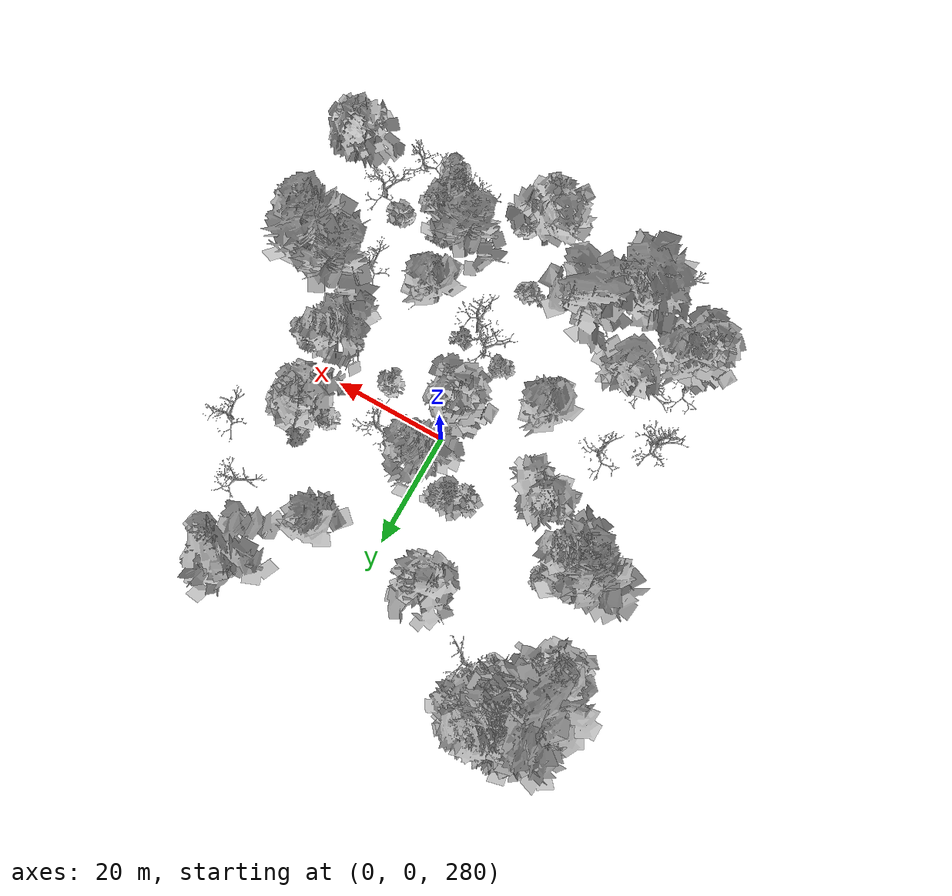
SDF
<sdf version="1.6">
 <world name="default">
  <light name="sun" type="directional">
   <pose>0 0 10 0 -0 0</pose>
   <diffuse>0.8 0.8 0.8 1</diffuse>
   <specular>0.2 0.2 0.2 1</specular>
   <attenuation>
    <range>1000</range>
    <constant>0.9</constant>
    <linear>0.01</linear>
    <quadratic>0.001</quadratic>
   </attenuation>
   <direction>-0.5 0.1 -0.9</direction>
  </light>
  <scene>
   <sky><clouds><speed>12</speed></clouds></sky>
   <ambient>0.4 0.4 0.4 1</ambient>
   <background>0.7 0.7 0.7 1</background>
   <shadows>1</shadows>
  </scene>
  <spherical_coordinates>
   <surface_model>EARTH_WGS84</surface_model>
   <latitude_deg>47.3977</latitude_deg>
   <longitude_deg>8.54559</longitude_deg>
   <elevation>0</elevation>
   <heading_deg>0</heading_deg>
  </spherical_coordinates>
  <physics name="default_physics" default="0" type="ode">
   <ode>
    <solver>
     <type>quick</type>
     <iters>100</iters>
     <sor>1.3</sor>
     <use_dynamic_moi_rescaling>0</use_dynamic_moi_rescaling>
    </solver>
    <constraints>
     <cfm>0</cfm>
     <erp>0.2</erp>
     <contact_max_correcting_vel>100</contact_max_correcting_vel>
     <contact_surface_layer>0.001</contact_surface_layer>
    </constraints>
   </ode>
   <max_step_size>0.002</max_step_size>
   <real_time_factor>1</real_time_factor>
   <real_time_update_rate>500</real_time_update_rate>
  </physics>
  <gravity>0 0 -9.8</gravity>
  <magnetic_field>6e-06 2.3e-05 -4.2e-05</magnetic_field>
  <atmosphere type="adiabatic"/>
  <model name="my_mesh0">
   <pose>-27.08 29.3616 283.309 0 -0 1.56058</pose>
   <static>1</static>
   <link name="body">
    <visual name="visual">
     <geometry><mesh><uri>model://trees/3.dae</uri><scale>1 1 1</scale></mesh></geometry>
    </visual>
    <collision name="collision">
     <geometry><mesh><uri>model://trees/3.dae</uri><scale>1 1 1</scale></mesh></geometry>
    </collision>
   </link>
  </model>
  <model name="my_mesh1">
   <pose>-33.2148 34.19 281.773 0 0 -1.0908</pose>
   <static>1</static>
   <link name="body">
    <visual name="visual">
     <geometry><mesh><uri>model://trees/13.dae</uri><scale>1 1 1</scale></mesh></geometry>
    </visual>
    <collision name="collision">
     <geometry><mesh><uri>model://trees/13.dae</uri><scale>1 1 1</scale></mesh></geometry>
    </collision>
   </link>
  </model>
  <model name="my_mesh2">
   <pose>-27.71 35.5676 282.251 0 0 -0.21924</pose>
   <static>1</static>
   <link name="body">
    <visual name="visual">
     <geometry><mesh><uri>model://trees/17.dae</uri><scale>1 1 1</scale></mesh></geometry>
    </visual>
    <collision name="collision">
     <geometry><mesh><uri>model://trees/17.dae</uri><scale>1 1 1</scale></mesh></geometry>
    </collision>
   </link>
  </model>
  <model name="my_mesh3">
   <pose>-34.9308 33.2199 281.82 0 -0 0.451699</pose>
   <static>1</static>
   <link name="body">
    <visual name="visual">
     <geometry><mesh><uri>model://trees/12.dae</uri><scale>1 1 1</scale></mesh></geometry>
    </visual>
    <collision name="collision">
     <geometry><mesh><uri>model://trees/12.dae</uri><scale>1 1 1</scale></mesh></geometry>
    </collision>
   </link>
  </model>
  <model name="my_mesh4">
   <pose>-27.6302 35.4316 282.251 0 -0 0.899439</pose>
   <static>1</static>
   <link name="body">
    <visual name="visual">
     <geometry><mesh><uri>model://trees/9.dae</uri><scale>1 1 1</scale></mesh></geometry>
    </visual>
    <collision name="collision">
     <geometry><mesh><uri>model://trees/9.dae</uri><scale>1 1 1</scale></mesh></geometry>
    </collision>
   </link>
  </model>
  <model name="my_mesh5">
   <pose>-34.9073 29.0849 282.547 0 0 -0.911531</pose>
   <static>1</static>
   <link name="body">
    <visual name="visual">
     <geometry><mesh><uri>model://trees/14.dae</uri><scale>1 1 1</scale></mesh></geometry>
    </visual>
    <collision name="collision">
     <geometry><mesh><uri>model://trees/14.dae</uri><scale>1 1 1</scale></mesh></geometry>
    </collision>
   </link>
  </model>
  <model name="my_mesh6">
   <pose>-34.633 24.4824 283.371 0 0 -0.64298</pose>
   <static>1</static>
   <link name="body">
    <visual name="visual">
     <geometry><mesh><uri>model://trees/11.dae</uri><scale>1 1 1</scale></mesh></geometry>
    </visual>
    <collision name="collision">
     <geometry><mesh><uri>model://trees/11.dae</uri><scale>1 1 1</scale></mesh></geometry>
    </collision>
   </link>
  </model>
  <model name="my_mesh7">
   <pose>-35.4979 32.6104 281.944 0 -0 1.14506</pose>
   <static>1</static>
   <link name="body">
    <visual name="visual">
     <geometry><mesh><uri>model://trees/14.dae</uri><scale>1 1 1</scale></mesh></geometry>
    </visual>
    <collision name="collision">
     <geometry><mesh><uri>model://trees/14.dae</uri><scale>1 1 1</scale></mesh></geometry>
    </collision>
   </link>
  </model>
  <model name="my_mesh8">
   <pose>-33.7029 29.4843 282.44 0 0 -1.15808</pose>
   <static>1</static>
   <link name="body">
    <visual name="visual">
     <geometry><mesh><uri>model://trees/13.dae</uri><scale>1 1 1</scale></mesh></geometry>
    </visual>
    <collision name="collision">
     <geometry><mesh><uri>model://trees/13.dae</uri><scale>1 1 1</scale></mesh></geometry>
    </collision>
   </link>
  </model>
  <model name="my_mesh9">
   <pose>-31.7234 34.7584 281.894 0 -0 1.48763</pose>
   <static>1</static>
   <link name="body">
    <visual name="visual">
     <geometry><mesh><uri>model://trees/5.dae</uri><scale>1 1 1</scale></mesh></geometry>
    </visual>
    <collision name="collision">
     <geometry><mesh><uri>model://trees/5.dae</uri><scale>1 1 1</scale></mesh></geometry>
    </collision>
   </link>
  </model>
  <model name="my_mesh10">
   <pose>-29.0335 33.8658 282.332 0 0 -0.071717</pose>
   <static>1</static>
   <link name="body">
    <visual name="visual">
     <geometry><mesh><uri>model://trees/15.dae</uri><scale>1 1 1</scale></mesh></geometry>
    </visual>
    <collision name="collision">
     <geometry><mesh><uri>model://trees/15.dae</uri><scale>1 1 1</scale></mesh></geometry>
    </collision>
   </link>
  </model>
  <model name="my_mesh11">
   <pose>-33.6003 34.6617 281.659 0 -0 0.448409</pose>
   <static>1</static>
   <link name="body">
    <visual name="visual">
     <geometry><mesh><uri>model://trees/12.dae</uri><scale>1 1 1</scale></mesh></geometry>
    </visual>
    <collision name="collision">
     <geometry><mesh><uri>model://trees/12.dae</uri><scale>1 1 1</scale></mesh></geometry>
    </collision>
   </link>
  </model>
  <model name="my_mesh12">
   <pose>-35.8152 30.1003 282.234 0 0 -0.646341</pose>
   <static>1</static>
   <link name="body">
    <visual name="visual">
     <geometry><mesh><uri>model://trees/2.dae</uri><scale>1 1 1</scale></mesh></geometry>
    </visual>
    <collision name="collision">
     <geometry><mesh><uri>model://trees/2.dae</uri><scale>1 1 1</scale></mesh></geometry>
    </collision>
   </link>
  </model>
  <model name="my_mesh13">
   <pose>-32.1141 35.4773 281.796 0 0 -0.62414</pose>
   <static>1</static>
   <link name="body">
    <visual name="visual">
     <geometry><mesh><uri>model://trees/12.dae</uri><scale>1 1 1</scale></mesh></geometry>
    </visual>
    <collision name="collision">
     <geometry><mesh><uri>model://trees/12.dae</uri><scale>1 1 1</scale></mesh></geometry>
    </collision>
   </link>
  </model>
  <model name="my_mesh14">
   <pose>-34.2608 32.1847 282.056 0 0 -0.148178</pose>
   <static>1</static>
   <link name="body">
    <visual name="visual">
     <geometry><mesh><uri>model://trees/16.dae</uri><scale>1 1 1</scale></mesh></geometry>
    </visual>
    <collision name="collision">
     <geometry><mesh><uri>model://trees/16.dae</uri><scale>1 1 1</scale></mesh></geometry>
    </collision>
   </link>
  </model>
  <model name="my_mesh15">
   <pose>-35.9845 28.1498 282.554 0 -0 0.48832</pose>
   <static>1</static>
   <link name="body">
    <visual name="visual">
     <geometry><mesh><uri>model://trees/18.dae</uri><scale>1 1 1</scale></mesh></geometry>
    </visual>
    <collision name="collision">
     <geometry><mesh><uri>model://trees/18.dae</uri><scale>1 1 1</scale></mesh></geometry>
    </collision>
   </link>
  </model>
  <model name="my_mesh16">
   <pose>-29.2542 35.751 282.116 0 -0 0.074622</pose>
   <static>1</static>
   <link name="body">
    <visual name="visual">
     <geometry><mesh><uri>model://trees/15.dae</uri><scale>1 1 1</scale></mesh></geometry>
    </visual>
    <collision name="collision">
     <geometry><mesh><uri>model://trees/15.dae</uri><scale>1 1 1</scale></mesh></geometry>
    </collision>
   </link>
  </model>
  <model name="my_mesh17">
   <pose>-34.05 34.9631 281.626 0 0 -1.38641</pose>
   <static>1</static>
   <link name="body">
    <visual name="visual">
     <geometry><mesh><uri>model://trees/9.dae</uri><scale>1 1 1</scale></mesh></geometry>
    </visual>
    <collision name="collision">
     <geometry><mesh><uri>model://trees/9.dae</uri><scale>1 1 1</scale></mesh></geometry>
    </collision>
   </link>
  </model>
  <model name="my_mesh18">
   <pose>-34.4219 35.2514 281.54 0 0 -1.02363</pose>
   <static>1</static>
   <link name="body">
    <visual name="visual">
     <geometry><mesh><uri>model://trees/10.dae</uri><scale>1 1 1</scale></mesh></geometry>
    </visual>
    <collision name="collision">
     <geometry><mesh><uri>model://trees/10.dae</uri><scale>1 1 1</scale></mesh></geometry>
    </collision>
   </link>
  </model>
  <model name="my_mesh19">
   <pose>-33.6243 33.0978 281.886 0 -0 1.3731</pose>
   <static>1</static>
   <link name="body">
    <visual name="visual">
     <geometry><mesh><uri>model://trees/16.dae</uri><scale>1 1 1</scale></mesh></geometry>
    </visual>
    <collision name="collision">
     <geometry><mesh><uri>model://trees/16.dae</uri><scale>1 1 1</scale></mesh></geometry>
    </collision>
   </link>
  </model>
  <model name="my_mesh20">
   <pose>-27.3326 30.5189 283.03 0 0 -1.53605</pose>
   <static>1</static>
   <link name="body">
    <visual name="visual">
     <geometry><mesh><uri>model://trees/18.dae</uri><scale>1 1 1</scale></mesh></geometry>
    </visual>
    <collision name="collision">
     <geometry><mesh><uri>model://trees/18.dae</uri><scale>1 1 1</scale></mesh></geometry>
    </collision>
   </link>
  </model>
  <model name="my_mesh21">
   <pose>-33.6348 35.3832 281.507 0 0 -0.627088</pose>
   <static>1</static>
   <link name="body">
    <visual name="visual">
     <geometry><mesh><uri>model://trees/13.dae</uri><scale>1 1 1</scale></mesh></geometry>
    </visual>
    <collision name="collision">
     <geometry><mesh><uri>model://trees/13.dae</uri><scale>1 1 1</scale></mesh></geometry>
    </collision>
   </link>
  </model>
  <model name="my_mesh22">
   <pose>-35.5988 30.5865 282.286 0 0 -0.412915</pose>
   <static>1</static>
   <link name="body">
    <visual name="visual">
     <geometry><mesh><uri>model://trees/17.dae</uri><scale>1 1 1</scale></mesh></geometry>
    </visual>
    <collision name="collision">
     <geometry><mesh><uri>model://trees/17.dae</uri><scale>1 1 1</scale></mesh></geometry>
    </collision>
   </link>
  </model>
  <model name="my_mesh23">
   <pose>-24.5969 35.7571 282.515 0 -0 0.45299</pose>
   <static>1</static>
   <link name="body">
    <visual name="visual">
     <geometry><mesh><uri>model://trees/16.dae</uri><scale>1 1 1</scale></mesh></geometry>
    </visual>
    <collision name="collision">
     <geometry><mesh><uri>model://trees/16.dae</uri><scale>1 1 1</scale></mesh></geometry>
    </collision>
   </link>
  </model>
  <model name="my_mesh24">
   <pose>-35.0999 32.1382 282.066 0 -0 0.443659</pose>
   <static>1</static>
   <link name="body">
    <visual name="visual">
     <geometry><mesh><uri>model://trees/8.dae</uri><scale>1 1 1</scale></mesh></geometry>
    </visual>
    <collision name="collision">
     <geometry><mesh><uri>model://trees/8.dae</uri><scale>1 1 1</scale></mesh></geometry>
    </collision>
   </link>
  </model>
  <model name="my_mesh25">
   <pose>-34.626 31.3235 282.217 0 0 -1.0514</pose>
   <static>1</static>
   <link name="body">
    <visual name="visual">
     <geometry><mesh><uri>model://trees/6.dae</uri><scale>1 1 1</scale></mesh></geometry>
    </visual>
    <collision name="collision">
     <geometry><mesh><uri>model://trees/6.dae</uri><scale>1 1 1</scale></mesh></geometry>
    </collision>
   </link>
  </model>
  <model name="my_mesh26">
   <pose>-34.9206 34.3846 281.594 0 -0 0.857285</pose>
   <static>1</static>
   <link name="body">
    <visual name="visual">
     <geometry><mesh><uri>model://trees/15.dae</uri><scale>1 1 1</scale></mesh></geometry>
    </visual>
    <collision name="collision">
     <geometry><mesh><uri>model://trees/15.dae</uri><scale>1 1 1</scale></mesh></geometry>
    </collision>
   </link>
  </model>
  <model name="my_mesh27">
   <pose>-35.2116 34.1302 281.704 0 0 -1.44666</pose>
   <static>1</static>
   <link name="body">
    <visual name="visual">
     <geometry><mesh><uri>model://trees/5.dae</uri><scale>1 1 1</scale></mesh></geometry>
    </visual>
    <collision name="collision">
     <geometry><mesh><uri>model://trees/5.dae</uri><scale>1 1 1</scale></mesh></geometry>
    </collision>
   </link>
  </model>
  <model name="my_mesh28">
   <pose>-34.598 28.6913 282.547 0 0 -1.52908</pose>
   <static>1</static>
   <link name="body">
    <visual name="visual">
     <geometry><mesh><uri>model://trees/10.dae</uri><scale>1 1 1</scale></mesh></geometry>
    </visual>
    <collision name="collision">
     <geometry><mesh><uri>model://trees/10.dae</uri><scale>1 1 1</scale></mesh></geometry>
    </collision>
   </link>
  </model>
  <model name="my_mesh29">
   <pose>-34.7157 33.9936 281.707 0 -0 0.838499</pose>
   <static>1</static>
   <link name="body">
    <visual name="visual">
     <geometry><mesh><uri>model://trees/18.dae</uri><scale>1 1 1</scale></mesh></geometry>
    </visual>
    <collision name="collision">
     <geometry><mesh><uri>model://trees/18.dae</uri><scale>1 1 1</scale></mesh></geometry>
    </collision>
   </link>
  </model>
  <model name="my_mesh30">
   <pose>-32.2778 33.9438 281.856 0 -0 0.050221</pose>
   <static>1</static>
   <link name="body">
    <visual name="visual">
     <geometry><mesh><uri>model://trees/9.dae</uri><scale>1 1 1</scale></mesh></geometry>
    </visual>
    <collision name="collision">
     <geometry><mesh><uri>model://trees/9.dae</uri><scale>1 1 1</scale></mesh></geometry>
    </collision>
   </link>
  </model>
  <model name="my_mesh31">
   <pose>-26.3823 35.094 282.403 0 0 -1.26321</pose>
   <static>1</static>
   <link name="body">
    <visual name="visual">
     <geometry><mesh><uri>model://trees/8.dae</uri><scale>1 1 1</scale></mesh></geometry>
    </visual>
    <collision name="collision">
     <geometry><mesh><uri>model://trees/8.dae</uri><scale>1 1 1</scale></mesh></geometry>
    </collision>
   </link>
  </model>
  <model name="my_mesh32">
   <pose>-35.251 33.3666 281.822 0 -0 0.907395</pose>
   <static>1</static>
   <link name="body">
    <visual name="visual">
     <geometry><mesh><uri>model://trees/5.dae</uri><scale>1 1 1</scale></mesh></geometry>
    </visual>
    <collision name="collision">
     <geometry><mesh><uri>model://trees/5.dae</uri><scale>1 1 1</scale></mesh></geometry>
    </collision>
   </link>
  </model>
  <model name="my_mesh33">
   <pose>-27.3487 6.71551 287.218 0 -0 0.512794</pose>
   <static>1</static>
   <link name="body">
    <visual name="visual">
     <geometry><mesh><uri>model://trees/8.dae</uri><scale>1 1 1</scale></mesh></geometry>
    </visual>
    <collision name="collision">
     <geometry><mesh><uri>model://trees/8.dae</uri><scale>1 1 1</scale></mesh></geometry>
    </collision>
   </link>
  </model>
  <model name="my_mesh34">
   <pose>-25.1824 -20.3055 293.921 0 0 -1.47061</pose>
   <static>1</static>
   <link name="body">
    <visual name="visual">
     <geometry><mesh><uri>model://trees/19.dae</uri><scale>1 1 1</scale></mesh></geometry>
    </visual>
    <collision name="collision">
     <geometry><mesh><uri>model://trees/19.dae</uri><scale>1 1 1</scale></mesh></geometry>
    </collision>
   </link>
  </model>
  <model name="my_mesh35">
   <pose>22.1965 -34.4807 296.698 0 -0 1.12754</pose>
   <static>1</static>
   <link name="body">
    <visual name="visual">
     <geometry><mesh><uri>model://trees/19.dae</uri><scale>1 1 1</scale></mesh></geometry>
    </visual>
    <collision name="collision">
     <geometry><mesh><uri>model://trees/19.dae</uri><scale>1 1 1</scale></mesh></geometry>
    </collision>
   </link>
  </model>
  <model name="my_mesh36">
   <pose>-4.3499 -11.4677 294.332 0 0 -0.521723</pose>
   <static>1</static>
   <link name="body">
    <visual name="visual">
     <geometry><mesh><uri>model://trees/6.dae</uri><scale>1 1 1</scale></mesh></geometry>
    </visual>
    <collision name="collision">
     <geometry><mesh><uri>model://trees/6.dae</uri><scale>1 1 1</scale></mesh></geometry>
    </collision>
   </link>
  </model>
  <model name="my_mesh37">
   <pose>16.6548 -29.2113 295.396 0 -0 0.946891</pose>
   <static>1</static>
   <link name="body">
    <visual name="visual">
     <geometry><mesh><uri>model://trees/7.dae</uri><scale>1 1 1</scale></mesh></geometry>
    </visual>
    <collision name="collision">
     <geometry><mesh><uri>model://trees/7.dae</uri><scale>1 1 1</scale></mesh></geometry>
    </collision>
   </link>
  </model>
  <model name="my_mesh38">
   <pose>-23.8608 -8.30621 290.873 0 -0 0.010255</pose>
   <static>1</static>
   <link name="body">
    <visual name="visual">
     <geometry><mesh><uri>model://trees/19.dae</uri><scale>1 1 1</scale></mesh></geometry>
    </visual>
    <collision name="collision">
     <geometry><mesh><uri>model://trees/19.dae</uri><scale>1 1 1</scale></mesh></geometry>
    </collision>
   </link>
  </model>
  <model name="my_mesh39">
   <pose>3.36749 -32.2665 298.408 0 -0 0.164489</pose>
   <static>1</static>
   <link name="body">
    <visual name="visual">
     <geometry><mesh><uri>model://trees/1.dae</uri><scale>1 1 1</scale></mesh></geometry>
    </visual>
    <collision name="collision">
     <geometry><mesh><uri>model://trees/1.dae</uri><scale>1 1 1</scale></mesh></geometry>
    </collision>
   </link>
  </model>
  <model name="my_mesh40">
   <pose>2.01543 -15.3805 295.45 0 -0 0.105759</pose>
   <static>1</static>
   <link name="body">
    <visual name="visual">
     <geometry><mesh><uri>model://trees/16.dae</uri><scale>1 1 1</scale></mesh></geometry>
    </visual>
    <collision name="collision">
     <geometry><mesh><uri>model://trees/16.dae</uri><scale>1 1 1</scale></mesh></geometry>
    </collision>
   </link>
  </model>
  <model name="my_mesh41">
   <pose>-25.839 12.7473 286.133 0 -0 0.006409</pose>
   <static>1</static>
   <link name="body">
    <visual name="visual">
     <geometry><mesh><uri>model://trees/0.dae</uri><scale>1 1 1</scale></mesh></geometry>
    </visual>
    <collision name="collision">
     <geometry><mesh><uri>model://trees/0.dae</uri><scale>1 1 1</scale></mesh></geometry>
    </collision>
   </link>
  </model>
  <model name="my_mesh42">
   <pose>9.43755 22.8758 285.85 0 0 -0.950778</pose>
   <static>1</static>
   <link name="body">
    <visual name="visual">
     <geometry><mesh><uri>model://trees/11.dae</uri><scale>1 1 1</scale></mesh></geometry>
    </visual>
    <collision name="collision">
     <geometry><mesh><uri>model://trees/11.dae</uri><scale>1 1 1</scale></mesh></geometry>
    </collision>
   </link>
  </model>
  <model name="my_mesh43">
   <pose>-0.000316 -34.0376 298.992 0 -0 1.53999</pose>
   <static>1</static>
   <link name="body">
    <visual name="visual">
     <geometry><mesh><uri>model://trees/14.dae</uri><scale>1 1 1</scale></mesh></geometry>
    </visual>
    <collision name="collision">
     <geometry><mesh><uri>model://trees/14.dae</uri><scale>1 1 1</scale></mesh></geometry>
    </collision>
   </link>
  </model>
  <model name="my_mesh44">
   <pose>9.24655 -26.3048 296.396 0 0 -1.3696</pose>
   <static>1</static>
   <link name="body">
    <visual name="visual">
     <geometry><mesh><uri>model://trees/8.dae</uri><scale>1 1 1</scale></mesh></geometry>
    </visual>
    <collision name="collision">
     <geometry><mesh><uri>model://trees/8.dae</uri><scale>1 1 1</scale></mesh></geometry>
    </collision>
   </link>
  </model>
  <model name="my_mesh45">
   <pose>14.8184 -25.7251 295.186 0 -0 0.97515</pose>
   <static>1</static>
   <link name="body">
    <visual name="visual">
     <geometry><mesh><uri>model://trees/0.dae</uri><scale>1 1 1</scale></mesh></geometry>
    </visual>
    <collision name="collision">
     <geometry><mesh><uri>model://trees/0.dae</uri><scale>1 1 1</scale></mesh></geometry>
    </collision>
   </link>
  </model>
  <model name="my_mesh46">
   <pose>-26.1992 28.5328 283.473 0 -0 0.549573</pose>
   <static>1</static>
   <link name="body">
    <visual name="visual">
     <geometry><mesh><uri>model://trees/0.dae</uri><scale>1 1 1</scale></mesh></geometry>
    </visual>
    <collision name="collision">
     <geometry><mesh><uri>model://trees/0.dae</uri><scale>1 1 1</scale></mesh></geometry>
    </collision>
   </link>
  </model>
  <model name="my_mesh47">
   <pose>16.6235 7.48293 288.641 0 -0 0.023806</pose>
   <static>1</static>
   <link name="body">
    <visual name="visual">
     <geometry><mesh><uri>model://trees/0.dae</uri><scale>1 1 1</scale></mesh></geometry>
    </visual>
    <collision name="collision">
     <geometry><mesh><uri>model://trees/0.dae</uri><scale>1 1 1</scale></mesh></geometry>
    </collision>
   </link>
  </model>
  <model name="my_mesh48">
   <pose>21.8544 -25.7106 294.065 0 -0 1.03877</pose>
   <static>1</static>
   <link name="body">
    <visual name="visual">
     <geometry><mesh><uri>model://trees/0.dae</uri><scale>1 1 1</scale></mesh></geometry>
    </visual>
    <collision name="collision">
     <geometry><mesh><uri>model://trees/0.dae</uri><scale>1 1 1</scale></mesh></geometry>
    </collision>
   </link>
  </model>
  <model name="my_mesh49">
   <pose>14.708 -31.7686 296.523 0 0 -0.999283</pose>
   <static>1</static>
   <link name="body">
    <visual name="visual">
     <geometry><mesh><uri>model://trees/7.dae</uri><scale>1 1 1</scale></mesh></geometry>
    </visual>
    <collision name="collision">
     <geometry><mesh><uri>model://trees/7.dae</uri><scale>1 1 1</scale></mesh></geometry>
    </collision>
   </link>
  </model>
  <model name="my_mesh50">
   <pose>-27.2608 -25.5705 294.839 0 0 -0.063835</pose>
   <static>1</static>
   <link name="body">
    <visual name="visual">
     <geometry><mesh><uri>model://trees/11.dae</uri><scale>1 1 1</scale></mesh></geometry>
    </visual>
    <collision name="collision">
     <geometry><mesh><uri>model://trees/11.dae</uri><scale>1 1 1</scale></mesh></geometry>
    </collision>
   </link>
  </model>
  <model name="my_mesh51">
   <pose>-32.2591 8.85603 286.042 0 0 -0.965377</pose>
   <static>1</static>
   <link name="body">
    <visual name="visual">
     <geometry><mesh><uri>model://trees/9.dae</uri><scale>1 1 1</scale></mesh></geometry>
    </visual>
    <collision name="collision">
     <geometry><mesh><uri>model://trees/9.dae</uri><scale>1 1 1</scale></mesh></geometry>
    </collision>
   </link>
  </model>
  <model name="my_mesh52">
   <pose>-11.5762 -25.1957 297.018 0 -0 0.745318</pose>
   <static>1</static>
   <link name="body">
    <visual name="visual">
     <geometry><mesh><uri>model://trees/10.dae</uri><scale>1 1 1</scale></mesh></geometry>
    </visual>
    <collision name="collision">
     <geometry><mesh><uri>model://trees/10.dae</uri><scale>1 1 1</scale></mesh></geometry>
    </collision>
   </link>
  </model>
  <model name="my_mesh53">
   <pose>2.15847 2.64685 289.774 0 -0 0.649632</pose>
   <static>1</static>
   <link name="body">
    <visual name="visual">
     <geometry><mesh><uri>model://trees/0.dae</uri><scale>1 1 1</scale></mesh></geometry>
    </visual>
    <collision name="collision">
     <geometry><mesh><uri>model://trees/0.dae</uri><scale>1 1 1</scale></mesh></geometry>
    </collision>
   </link>
  </model>
  <model name="my_mesh54">
   <pose>12.2169 -31.3235 296.887 0 0 -0.893631</pose>
   <static>1</static>
   <link name="body">
    <visual name="visual">
     <geometry><mesh><uri>model://trees/16.dae</uri><scale>1 1 1</scale></mesh></geometry>
    </visual>
    <collision name="collision">
     <geometry><mesh><uri>model://trees/16.dae</uri><scale>1 1 1</scale></mesh></geometry>
    </collision>
   </link>
  </model>
  <model name="my_mesh55">
   <pose>-30.2772 -13.8099 291.565 0 0 -0.509533</pose>
   <static>1</static>
   <link name="body">
    <visual name="visual">
     <geometry><mesh><uri>model://trees/18.dae</uri><scale>1 1 1</scale></mesh></geometry>
    </visual>
    <collision name="collision">
     <geometry><mesh><uri>model://trees/18.dae</uri><scale>1 1 1</scale></mesh></geometry>
    </collision>
   </link>
  </model>
  <model name="my_mesh56">
   <pose>31.7124 -32.5406 296.257 0 -0 1.31522</pose>
   <static>1</static>
   <link name="body">
    <visual name="visual">
     <geometry><mesh><uri>model://trees/15.dae</uri><scale>1 1 1</scale></mesh></geometry>
    </visual>
    <collision name="collision">
     <geometry><mesh><uri>model://trees/15.dae</uri><scale>1 1 1</scale></mesh></geometry>
    </collision>
   </link>
  </model>
  <model name="my_mesh57">
   <pose>-13.6921 -9.23942 292.198 0 0 -0.159759</pose>
   <static>1</static>
   <link name="body">
    <visual name="visual">
     <geometry><mesh><uri>model://trees/11.dae</uri><scale>1 1 1</scale></mesh></geometry>
    </visual>
    <collision name="collision">
     <geometry><mesh><uri>model://trees/11.dae</uri><scale>1 1 1</scale></mesh></geometry>
    </collision>
   </link>
  </model>
  <model name="my_mesh58">
   <pose>-17.4355 -31.1931 298.543 0 -0 0.963019</pose>
   <static>1</static>
   <link name="body">
    <visual name="visual">
     <geometry><mesh><uri>model://trees/9.dae</uri><scale>1 1 1</scale></mesh></geometry>
    </visual>
    <collision name="collision">
     <geometry><mesh><uri>model://trees/9.dae</uri><scale>1 1 1</scale></mesh></geometry>
    </collision>
   </link>
  </model>
  <model name="my_mesh59">
   <pose>-33.7429 24.1478 283.47 0 -0 1.26919</pose>
   <static>1</static>
   <link name="body">
    <visual name="visual">
     <geometry><mesh><uri>model://trees/14.dae</uri><scale>1 1 1</scale></mesh></geometry>
    </visual>
    <collision name="collision">
     <geometry><mesh><uri>model://trees/14.dae</uri><scale>1 1 1</scale></mesh></geometry>
    </collision>
   </link>
  </model>
  <model name="my_mesh60">
   <pose>-21.3098 -19.664 294.309 0 -0 1.40196</pose>
   <static>1</static>
   <link name="body">
    <visual name="visual">
     <geometry><mesh><uri>model://trees/11.dae</uri><scale>1 1 1</scale></mesh></geometry>
    </visual>
    <collision name="collision">
     <geometry><mesh><uri>model://trees/11.dae</uri><scale>1 1 1</scale></mesh></geometry>
    </collision>
   </link>
  </model>
  <model name="my_mesh61">
   <pose>20.0926 -8.4816 291.372 0 -0 1.50837</pose>
   <static>1</static>
   <link name="body">
    <visual name="visual">
     <geometry><mesh><uri>model://trees/5.dae</uri><scale>1 1 1</scale></mesh></geometry>
    </visual>
    <collision name="collision">
     <geometry><mesh><uri>model://trees/5.dae</uri><scale>1 1 1</scale></mesh></geometry>
    </collision>
   </link>
  </model>
  <model name="my_mesh62">
   <pose>-0.783805 -12.4683 294.859 0 0 -0.625958</pose>
   <static>1</static>
   <link name="body">
    <visual name="visual">
     <geometry><mesh><uri>model://trees/16.dae</uri><scale>1 1 1</scale></mesh></geometry>
    </visual>
    <collision name="collision">
     <geometry><mesh><uri>model://trees/16.dae</uri><scale>1 1 1</scale></mesh></geometry>
    </collision>
   </link>
  </model>
  <model name="my_mesh63">
   <pose>-0.876967 -4.31514 292.379 0 -0 0.480837</pose>
   <static>1</static>
   <link name="body">
    <visual name="visual">
     <geometry><mesh><uri>model://trees/14.dae</uri><scale>1 1 1</scale></mesh></geometry>
    </visual>
    <collision name="collision">
     <geometry><mesh><uri>model://trees/14.dae</uri><scale>1 1 1</scale></mesh></geometry>
    </collision>
   </link>
  </model>
  <model name="my_mesh64">
   <pose>19.3899 11.5114 288.096 0 -0 1.40862</pose>
   <static>1</static>
   <link name="body">
    <visual name="visual">
     <geometry><mesh><uri>model://trees/4.dae</uri><scale>1 1 1</scale></mesh></geometry>
    </visual>
    <collision name="collision">
     <geometry><mesh><uri>model://trees/4.dae</uri><scale>1 1 1</scale></mesh></geometry>
    </collision>
   </link>
  </model>
  <model name="my_mesh65">
   <pose>0.050335 5.29337 289.309 0 0 -0.135734</pose>
   <static>1</static>
   <link name="body">
    <visual name="visual">
     <geometry><mesh><uri>model://trees/8.dae</uri><scale>1 1 1</scale></mesh></geometry>
    </visual>
    <collision name="collision">
     <geometry><mesh><uri>model://trees/8.dae</uri><scale>1 1 1</scale></mesh></geometry>
    </collision>
   </link>
  </model>
  <model name="my_mesh66">
   <pose>-26.882 32.0136 282.863 0 -0 1.10118</pose>
   <static>1</static>
   <link name="body">
    <visual name="visual">
     <geometry><mesh><uri>model://trees/12.dae</uri><scale>1 1 1</scale></mesh></geometry>
    </visual>
    <collision name="collision">
     <geometry><mesh><uri>model://trees/12.dae</uri><scale>1 1 1</scale></mesh></geometry>
    </collision>
   </link>
  </model>
  <model name="my_mesh67">
   <pose>19.9953 6.68206 288.798 0 0 -1.07323</pose>
   <static>1</static>
   <link name="body">
    <visual name="visual">
     <geometry><mesh><uri>model://trees/14.dae</uri><scale>1 1 1</scale></mesh></geometry>
    </visual>
    <collision name="collision">
     <geometry><mesh><uri>model://trees/14.dae</uri><scale>1 1 1</scale></mesh></geometry>
    </collision>
   </link>
  </model>
  <model name="my_mesh68">
   <pose>-31.1063 -14.1951 291.457 0 0 -0.727821</pose>
   <static>1</static>
   <link name="body">
    <visual name="visual">
     <geometry><mesh><uri>model://trees/19.dae</uri><scale>1 1 1</scale></mesh></geometry>
    </visual>
    <collision name="collision">
     <geometry><mesh><uri>model://trees/19.dae</uri><scale>1 1 1</scale></mesh></geometry>
    </collision>
   </link>
  </model>
  <model name="my_mesh69">
   <pose>10.6495 -16.983 294.217 0 0 -0.255313</pose>
   <static>1</static>
   <link name="body">
    <visual name="visual">
     <geometry><mesh><uri>model://trees/11.dae</uri><scale>1 1 1</scale></mesh></geometry>
    </visual>
    <collision name="collision">
     <geometry><mesh><uri>model://trees/11.dae</uri><scale>1 1 1</scale></mesh></geometry>
    </collision>
   </link>
  </model>
  <model name="my_mesh70">
   <pose>20.262 8.08786 288.471 0 -0 1.45165</pose>
   <static>1</static>
   <link name="body">
    <visual name="visual">
     <geometry><mesh><uri>model://trees/11.dae</uri><scale>1 1 1</scale></mesh></geometry>
    </visual>
    <collision name="collision">
     <geometry><mesh><uri>model://trees/11.dae</uri><scale>1 1 1</scale></mesh></geometry>
    </collision>
   </link>
  </model>
  <model name="my_mesh71">
   <pose>-21.4652 -34.6261 298.532 0 0 -0.641083</pose>
   <static>1</static>
   <link name="body">
    <visual name="visual">
     <geometry><mesh><uri>model://trees/17.dae</uri><scale>1 1 1</scale></mesh></geometry>
    </visual>
    <collision name="collision">
     <geometry><mesh><uri>model://trees/17.dae</uri><scale>1 1 1</scale></mesh></geometry>
    </collision>
   </link>
  </model>
  <model name="my_mesh72">
   <pose>-21.3303 30.1597 283.606 0 -0 0.976987</pose>
   <static>1</static>
   <link name="body">
    <visual name="visual">
     <geometry><mesh><uri>model://trees/17.dae</uri><scale>1 1 1</scale></mesh></geometry>
    </visual>
    <collision name="collision">
     <geometry><mesh><uri>model://trees/17.dae</uri><scale>1 1 1</scale></mesh></geometry>
    </collision>
   </link>
  </model>
  <model name="my_mesh73">
   <pose>-19.2009 2.06853 288.757 0 -0 0.878712</pose>
   <static>1</static>
   <link name="body">
    <visual name="visual">
     <geometry><mesh><uri>model://trees/13.dae</uri><scale>1 1 1</scale></mesh></geometry>
    </visual>
    <collision name="collision">
     <geometry><mesh><uri>model://trees/13.dae</uri><scale>1 1 1</scale></mesh></geometry>
    </collision>
   </link>
  </model>
  <model name="my_mesh74">
   <pose>13.2838 -25.831 295.4 0 0 -0.157344</pose>
   <static>1</static>
   <link name="body">
    <visual name="visual">
     <geometry><mesh><uri>model://trees/4.dae</uri><scale>1 1 1</scale></mesh></geometry>
    </visual>
    <collision name="collision">
     <geometry><mesh><uri>model://trees/4.dae</uri><scale>1 1 1</scale></mesh></geometry>
    </collision>
   </link>
  </model>
  <model name="my_mesh75">
   <pose>-9.49297 8.27024 288.927 0 0 -1.30518</pose>
   <static>1</static>
   <link name="body">
    <visual name="visual">
     <geometry><mesh><uri>model://trees/4.dae</uri><scale>1 1 1</scale></mesh></geometry>
    </visual>
    <collision name="collision">
     <geometry><mesh><uri>model://trees/4.dae</uri><scale>1 1 1</scale></mesh></geometry>
    </collision>
   </link>
  </model>
  <model name="my_mesh76">
   <pose>-6.89273 9.71672 288.463 0 0 -1.22008</pose>
   <static>1</static>
   <link name="body">
    <visual name="visual">
     <geometry><mesh><uri>model://trees/7.dae</uri><scale>1 1 1</scale></mesh></geometry>
    </visual>
    <collision name="collision">
     <geometry><mesh><uri>model://trees/7.dae</uri><scale>1 1 1</scale></mesh></geometry>
    </collision>
   </link>
  </model>
  <model name="my_mesh77">
   <pose>3.2613 -12.3236 294.433 0 -0 0.48844</pose>
   <static>1</static>
   <link name="body">
    <visual name="visual">
     <geometry><mesh><uri>model://trees/3.dae</uri><scale>1 1 1</scale></mesh></geometry>
    </visual>
    <collision name="collision">
     <geometry><mesh><uri>model://trees/3.dae</uri><scale>1 1 1</scale></mesh></geometry>
    </collision>
   </link>
  </model>
  <model name="my_mesh78">
   <pose>-25.9291 13.1032 285.92 0 -0 0.704952</pose>
   <static>1</static>
   <link name="body">
    <visual name="visual">
     <geometry><mesh><uri>model://trees/0.dae</uri><scale>1 1 1</scale></mesh></geometry>
    </visual>
    <collision name="collision">
     <geometry><mesh><uri>model://trees/0.dae</uri><scale>1 1 1</scale></mesh></geometry>
    </collision>
   </link>
  </model>
  <model name="my_mesh79">
   <pose>-5.94355 -23.2907 296.485 0 -0 0.326203</pose>
   <static>1</static>
   <link name="body">
    <visual name="visual">
     <geometry><mesh><uri>model://trees/3.dae</uri><scale>1 1 1</scale></mesh></geometry>
    </visual>
    <collision name="collision">
     <geometry><mesh><uri>model://trees/3.dae</uri><scale>1 1 1</scale></mesh></geometry>
    </collision>
   </link>
  </model>
  <model name="my_mesh80">
   <pose>24.8397 22.9582 286.311 0 0 -1.01272</pose>
   <static>1</static>
   <link name="body">
    <visual name="visual">
     <geometry><mesh><uri>model://trees/18.dae</uri><scale>1 1 1</scale></mesh></geometry>
    </visual>
    <collision name="collision">
     <geometry><mesh><uri>model://trees/18.dae</uri><scale>1 1 1</scale></mesh></geometry>
    </collision>
   </link>
  </model>
  <model name="my_mesh81">
   <pose>25.3743 -12.9142 291.585 0 0 -1.45219</pose>
   <static>1</static>
   <link name="body">
    <visual name="visual">
     <geometry><mesh><uri>model://trees/9.dae</uri><scale>1 1 1</scale></mesh></geometry>
    </visual>
    <collision name="collision">
     <geometry><mesh><uri>model://trees/9.dae</uri><scale>1 1 1</scale></mesh></geometry>
    </collision>
   </link>
  </model>
  <model name="my_mesh82">
   <pose>17.6141 -35.4818 297.278 0 0 -1.41774</pose>
   <static>1</static>
   <link name="body">
    <visual name="visual">
     <geometry><mesh><uri>model://trees/0.dae</uri><scale>1 1 1</scale></mesh></geometry>
    </visual>
    <collision name="collision">
     <geometry><mesh><uri>model://trees/0.dae</uri><scale>1 1 1</scale></mesh></geometry>
    </collision>
   </link>
  </model>
  <model name="my_mesh83">
   <pose>10.0506 -1.96414 290.518 0 0 -0.218842</pose>
   <static>1</static>
   <link name="body">
    <visual name="visual">
     <geometry><mesh><uri>model://trees/1.dae</uri><scale>1 1 1</scale></mesh></geometry>
    </visual>
    <collision name="collision">
     <geometry><mesh><uri>model://trees/1.dae</uri><scale>1 1 1</scale></mesh></geometry>
    </collision>
   </link>
  </model>
  <model name="my_mesh84">
   <pose>24.477 -2.86122 289.93 0 -0 0.453524</pose>
   <static>1</static>
   <link name="body">
    <visual name="visual">
     <geometry><mesh><uri>model://trees/7.dae</uri><scale>1 1 1</scale></mesh></geometry>
    </visual>
    <collision name="collision">
     <geometry><mesh><uri>model://trees/7.dae</uri><scale>1 1 1</scale></mesh></geometry>
    </collision>
   </link>
  </model>
  <model name="my_mesh85">
   <pose>-25.3729 35.8711 282.336 0 0 -0.679977</pose>
   <static>1</static>
   <link name="body">
    <visual name="visual">
     <geometry><mesh><uri>model://trees/12.dae</uri><scale>1 1 1</scale></mesh></geometry>
    </visual>
    <collision name="collision">
     <geometry><mesh><uri>model://trees/12.dae</uri><scale>1 1 1</scale></mesh></geometry>
    </collision>
   </link>
  </model>
  <model name="my_mesh86">
   <pose>25.8896 -27.8948 294.959 0 0 -0.497529</pose>
   <static>1</static>
   <link name="body">
    <visual name="visual">
     <geometry><mesh><uri>model://trees/17.dae</uri><scale>1 1 1</scale></mesh></geometry>
    </visual>
    <collision name="collision">
     <geometry><mesh><uri>model://trees/17.dae</uri><scale>1 1 1</scale></mesh></geometry>
    </collision>
   </link>
  </model>
  <model name="my_mesh87">
   <pose>30.3232 14.8896 287.546 0 -0 0.191578</pose>
   <static>1</static>
   <link name="body">
    <visual name="visual">
     <geometry><mesh><uri>model://trees/17.dae</uri><scale>1 1 1</scale></mesh></geometry>
    </visual>
    <collision name="collision">
     <geometry><mesh><uri>model://trees/17.dae</uri><scale>1 1 1</scale></mesh></geometry>
    </collision>
   </link>
  </model>
  <model name="my_mesh88">
   <pose>-2.15014 -34.7632 299.213 0 -0 0.631151</pose>
   <static>1</static>
   <link name="body">
    <visual name="visual">
     <geometry><mesh><uri>model://trees/0.dae</uri><scale>1 1 1</scale></mesh></geometry>
    </visual>
    <collision name="collision">
     <geometry><mesh><uri>model://trees/0.dae</uri><scale>1 1 1</scale></mesh></geometry>
    </collision>
   </link>
  </model>
  <model name="my_mesh89">
   <pose>-29.8426 -28.1443 295.038 0 0 -0.029206</pose>
   <static>1</static>
   <link name="body">
    <visual name="visual">
     <geometry><mesh><uri>model://trees/14.dae</uri><scale>1 1 1</scale></mesh></geometry>
    </visual>
    <collision name="collision">
     <geometry><mesh><uri>model://trees/14.dae</uri><scale>1 1 1</scale></mesh></geometry>
    </collision>
   </link>
  </model>
  <model name="my_mesh90">
   <pose>17.7981 33.1871 284.2 0 0 -0.316278</pose>
   <static>1</static>
   <link name="body">
    <visual name="visual">
     <geometry><mesh><uri>model://trees/10.dae</uri><scale>1 1 1</scale></mesh></geometry>
    </visual>
    <collision name="collision">
     <geometry><mesh><uri>model://trees/10.dae</uri><scale>1 1 1</scale></mesh></geometry>
    </collision>
   </link>
  </model>
  <model name="my_mesh91">
   <pose>8.99786 4.78377 288.98 0 -0 0.53004</pose>
   <static>1</static>
   <link name="body">
    <visual name="visual">
     <geometry><mesh><uri>model://trees/19.dae</uri><scale>1 1 1</scale></mesh></geometry>
    </visual>
    <collision name="collision">
     <geometry><mesh><uri>model://trees/19.dae</uri><scale>1 1 1</scale></mesh></geometry>
    </collision>
   </link>
  </model>
  <model name="my_mesh92">
   <pose>-13.4288 -13.1406 293.121 0 -0 1.25259</pose>
   <static>1</static>
   <link name="body">
    <visual name="visual">
     <geometry><mesh><uri>model://trees/3.dae</uri><scale>1 1 1</scale></mesh></geometry>
    </visual>
    <collision name="collision">
     <geometry><mesh><uri>model://trees/3.dae</uri><scale>1 1 1</scale></mesh></geometry>
    </collision>
   </link>
  </model>
  <model name="my_mesh93">
   <pose>22.5976 -16.9996 292.617 0 -0 0.123543</pose>
   <static>1</static>
   <link name="body">
    <visual name="visual">
     <geometry><mesh><uri>model://trees/18.dae</uri><scale>1 1 1</scale></mesh></geometry>
    </visual>
    <collision name="collision">
     <geometry><mesh><uri>model://trees/18.dae</uri><scale>1 1 1</scale></mesh></geometry>
    </collision>
   </link>
  </model>
  <model name="my_mesh94">
   <pose>-2.71991 -23.2852 296.76 0 -0 1.32859</pose>
   <static>1</static>
   <link name="body">
    <visual name="visual">
     <geometry><mesh><uri>model://trees/2.dae</uri><scale>1 1 1</scale></mesh></geometry>
    </visual>
    <collision name="collision">
     <geometry><mesh><uri>model://trees/2.dae</uri><scale>1 1 1</scale></mesh></geometry>
    </collision>
   </link>
  </model>
  <model name="my_mesh95">
   <pose>20.4421 -5.31356 290.906 0 -0 0.6486</pose>
   <static>1</static>
   <link name="body">
    <visual name="visual">
     <geometry><mesh><uri>model://trees/8.dae</uri><scale>1 1 1</scale></mesh></geometry>
    </visual>
    <collision name="collision">
     <geometry><mesh><uri>model://trees/8.dae</uri><scale>1 1 1</scale></mesh></geometry>
    </collision>
   </link>
  </model>
  <model name="my_mesh96">
   <pose>-10.4744 22.9595 285.654 0 0 -1.06475</pose>
   <static>1</static>
   <link name="body">
    <visual name="visual">
     <geometry><mesh><uri>model://trees/12.dae</uri><scale>1 1 1</scale></mesh></geometry>
    </visual>
    <collision name="collision">
     <geometry><mesh><uri>model://trees/12.dae</uri><scale>1 1 1</scale></mesh></geometry>
    </collision>
   </link>
  </model>
  <model name="my_mesh97">
   <pose>31.407 -16.8054 292.708 0 0 -0.603355</pose>
   <static>1</static>
   <link name="body">
    <visual name="visual">
     <geometry><mesh><uri>model://trees/9.dae</uri><scale>1 1 1</scale></mesh></geometry>
    </visual>
    <collision name="collision">
     <geometry><mesh><uri>model://trees/9.dae</uri><scale>1 1 1</scale></mesh></geometry>
    </collision>
   </link>
  </model>
  <model name="my_mesh98">
   <pose>-30.535 -23.4181 293.759 0 0 -0.525025</pose>
   <static>1</static>
   <link name="body">
    <visual name="visual">
     <geometry><mesh><uri>model://trees/19.dae</uri><scale>1 1 1</scale></mesh></geometry>
    </visual>
    <collision name="collision">
     <geometry><mesh><uri>model://trees/19.dae</uri><scale>1 1 1</scale></mesh></geometry>
    </collision>
   </link>
  </model>
 </world>
</sdf>
